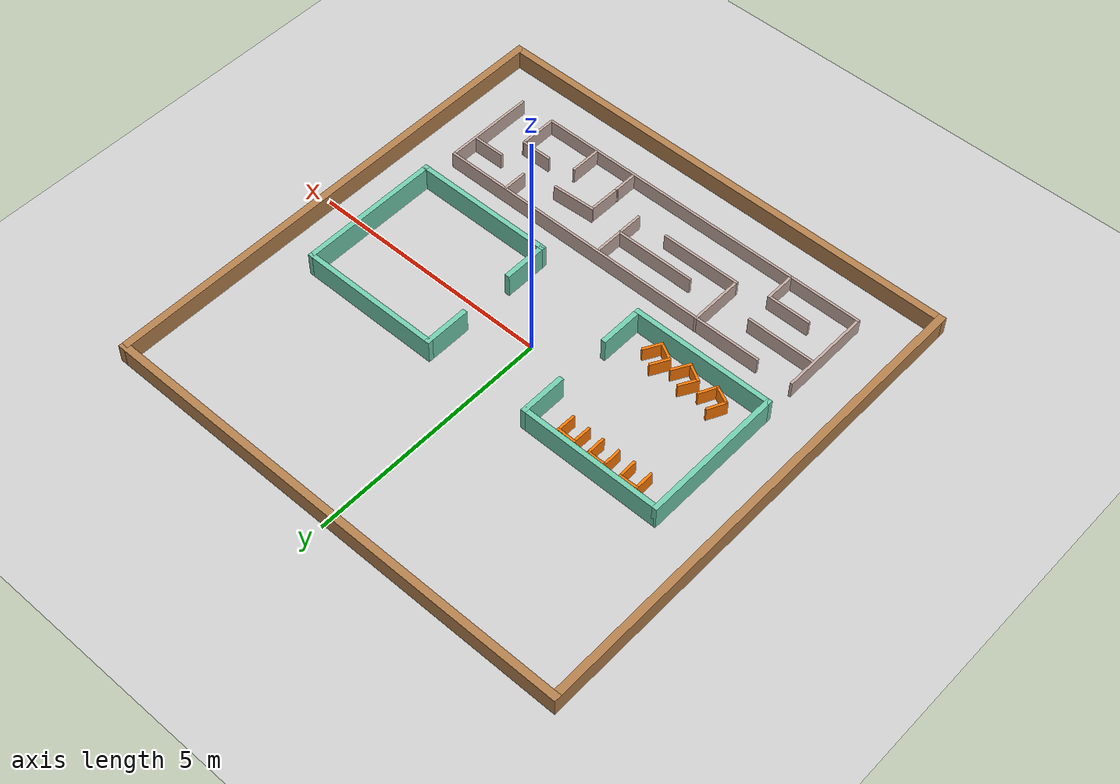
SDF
<sdf version="1.6">
 <world name="default">
  <light name="sun" type="directional">
   <pose>0 0 10 0 -0 0</pose>
   <diffuse>0.8 0.8 0.8 1</diffuse>
   <specular>0.1 0.1 0.1 1</specular>
   <attenuation>
    <range>1000</range>
    <constant>0.9</constant>
    <linear>0.01</linear>
    <quadratic>0.001</quadratic>
   </attenuation>
   <direction>-0.5 0.5 -1</direction>
  </light>
  <model name="ground_plane">
   <static>1</static>
   <link name="link">
    <collision name="collision">
     <geometry><plane><normal>0 0 1</normal><size>100 100</size></plane></geometry>
     <surface><friction><ode><mu>100</mu><mu2>50</mu2></ode></friction></surface>
    </collision>
    <visual name="visual">
     <cast_shadows>0</cast_shadows>
     <geometry><plane><normal>0 0 1</normal><size>100 100</size></plane></geometry>
     <material>
      <script><uri>file://media/materials/scripts/gazebo.material</uri><name>Gazebo/Grey</name></script>
     </material>
    </visual>
   </link>
  </model>
  <gravity>0 0 -9.8</gravity>
  <magnetic_field>6e-06 2.3e-05 -4.2e-05</magnetic_field>
  <atmosphere type="adiabatic"/>
  <physics name="default_physics" default="0" type="ode">
   <max_step_size>0.001</max_step_size>
   <real_time_factor>1</real_time_factor>
   <real_time_update_rate>1000</real_time_update_rate>
  </physics>
  <scene><ambient>0.4 0.4 0.4 1</ambient><background>0.7 0.7 0.7 1</background><shadows>1</shadows></scene>
  <spherical_coordinates>
   <surface_model>EARTH_WGS84</surface_model>
   <latitude_deg>0</latitude_deg>
   <longitude_deg>0</longitude_deg>
   <elevation>0</elevation>
   <heading_deg>0</heading_deg>
  </spherical_coordinates>
  <model name="Border">
   <pose>-0.018808 -0.04832 0 0 -0 0</pose>
   <link name="Wall_3">
    <collision name="Wall_3_Collision">
     <geometry><box><size>10 0.15 0.4</size></box></geometry>
     <pose>0 0 0.2 0 -0 0</pose>
    </collision>
    <visual name="Wall_3_Visual">
     <pose>0 0 0.2 0 -0 0</pose>
     <geometry><box><size>10 0.15 0.4</size></box></geometry>
     <material>
      <script><uri>file://media/materials/scripts/gazebo.material</uri><name>Gazebo/Wood</name></script>
      <ambient>1 1 1 1</ambient>
     </material>
    </visual>
    <pose>0 4.925 0 0 -0 0</pose>
   </link>
   <link name="Wall_4">
    <collision name="Wall_4_Collision">
     <geometry><box><size>10 0.15 0.4</size></box></geometry>
     <pose>0 0 0.2 0 -0 0</pose>
    </collision>
    <visual name="Wall_4_Visual">
     <pose>0 0 0.2 0 -0 0</pose>
     <geometry><box><size>10 0.15 0.4</size></box></geometry>
     <material>
      <script><uri>file://media/materials/scripts/gazebo.material</uri><name>Gazebo/Wood</name></script>
      <ambient>1 1 1 1</ambient>
     </material>
    </visual>
    <pose>4.925 0 0 0 0 -1.5708</pose>
   </link>
   <link name="Wall_5">
    <collision name="Wall_5_Collision">
     <geometry><box><size>10 0.15 0.4</size></box></geometry>
     <pose>0 0 0.2 0 -0 0</pose>
    </collision>
    <visual name="Wall_5_Visual">
     <pose>0 0 0.2 0 -0 0</pose>
     <geometry><box><size>10 0.15 0.4</size></box></geometry>
     <material>
      <script><uri>file://media/materials/scripts/gazebo.material</uri><name>Gazebo/Wood</name></script>
      <ambient>1 1 1 1</ambient>
     </material>
    </visual>
    <pose>0 -4.925 0 0 -0 3.14159</pose>
   </link>
   <link name="Wall_6">
    <collision name="Wall_6_Collision">
     <geometry><box><size>10 0.15 0.4</size></box></geometry>
     <pose>0 0 0.2 0 -0 0</pose>
    </collision>
    <visual name="Wall_6_Visual">
     <pose>0 0 0.2 0 -0 0</pose>
     <geometry><box><size>10 0.15 0.4</size></box></geometry>
     <material>
      <script><uri>file://media/materials/scripts/gazebo.material</uri><name>Gazebo/Wood</name></script>
      <ambient>1 1 1 1</ambient>
     </material>
    </visual>
    <pose>-4.925 0 0 0 -0 1.5708</pose>
   </link>
   <static>1</static>
  </model>
  <model name="EmptyArea">
   <pose>-2.48721 -0.096777 0 0 -0 3.13948</pose>
   <link name="Wall_0">
    <collision name="Wall_0_Collision">
     <geometry><box><size>2.95 0.1 0.5</size></box></geometry>
     <pose>0 0 0.25 0 -0 0</pose>
    </collision>
    <visual name="Wall_0_Visual">
     <pose>0 0 0.25 0 -0 0</pose>
     <geometry><box><size>2.95 0.1 0.5</size></box></geometry>
     <material>
      <script><uri>file://media/materials/scripts/gazebo.material</uri><name>Gazebo/Grey</name></script>
      <ambient>0.435294 0.796078 0.67451 1</ambient>
     </material>
    </visual>
    <pose>0 -1.425 0 0 -0 0</pose>
   </link>
   <link name="Wall_3">
    <collision name="Wall_3_Collision">
     <geometry><box><size>2.95 0.1 0.5</size></box></geometry>
     <pose>0 0 0.25 0 -0 0</pose>
    </collision>
    <visual name="Wall_3_Visual">
     <pose>0 0 0.25 0 -0 0</pose>
     <geometry><box><size>2.95 0.1 0.5</size></box></geometry>
     <material>
      <script><uri>file://media/materials/scripts/gazebo.material</uri><name>Gazebo/Grey</name></script>
      <ambient>0.435294 0.796078 0.67451 1</ambient>
     </material>
    </visual>
    <pose>1.425 0 0 0 -0 1.5708</pose>
   </link>
   <link name="Wall_4">
    <collision name="Wall_4_Collision">
     <geometry><box><size>2.95 0.1 0.5</size></box></geometry>
     <pose>0 0 0.25 0 -0 0</pose>
    </collision>
    <visual name="Wall_4_Visual">
     <pose>0 0 0.25 0 -0 0</pose>
     <geometry><box><size>2.95 0.1 0.5</size></box></geometry>
     <material>
      <script><uri>file://media/materials/scripts/gazebo.material</uri><name>Gazebo/Grey</name></script>
      <ambient>0.435294 0.796078 0.67451 1</ambient>
     </material>
    </visual>
    <pose>0 1.425 0 0 -0 3.14159</pose>
   </link>
   <link name="Wall_5">
    <collision name="Wall_5_Collision">
     <geometry><box><size>0.95 0.1 0.5</size></box></geometry>
     <pose>0 0 0.25 0 -0 0</pose>
    </collision>
    <visual name="Wall_5_Visual">
     <pose>0 0 0.25 0 -0 0</pose>
     <geometry><box><size>0.95 0.1 0.5</size></box></geometry>
     <material>
      <script><uri>file://media/materials/scripts/gazebo.material</uri><name>Gazebo/Grey</name></script>
      <ambient>0.435294 0.796078 0.67451 1</ambient>
     </material>
    </visual>
    <pose>-1.425 1 0 0 0 -1.5708</pose>
   </link>
   <link name="Wall_7">
    <collision name="Wall_7_Collision">
     <geometry><box><size>0.95 0.1 0.5</size></box></geometry>
     <pose>0 0 0.25 0 -0 0</pose>
    </collision>
    <visual name="Wall_7_Visual">
     <pose>0 0 0.25 0 -0 0</pose>
     <geometry><box><size>0.95 0.1 0.5</size></box></geometry>
     <material>
      <script><uri>file://media/materials/scripts/gazebo.material</uri><name>Gazebo/Grey</name></script>
      <ambient>0.435294 0.796078 0.67451 1</ambient>
     </material>
    </visual>
    <pose>-1.425 -1 0 0 -0 1.5708</pose>
   </link>
   <static>1</static>
  </model>
  <model name="ParkingPlace">
   <pose>-1.82007 0.965925 0 0 -0 1.5469</pose>
   <link name="Wall_4">
    <collision name="Wall_4_Collision">
     <geometry><box><size>0.399995 0.05 0.3</size></box></geometry>
     <pose>0 0 0.15 0 -0 0</pose>
    </collision>
    <visual name="Wall_4_Visual">
     <pose>0 0 0.15 0 -0 0</pose>
     <geometry><box><size>0.399995 0.05 0.3</size></box></geometry>
     <material>
      <script><uri>file://media/materials/scripts/gazebo.material</uri><name>Gazebo/Grey</name></script>
      <ambient>0.996078 0.47451 0.0196078 1</ambient>
     </material>
    </visual>
    <pose>0 0.175 0 0 -0 0</pose>
   </link>
   <link name="Wall_5">
    <collision name="Wall_5_Collision">
     <geometry><box><size>0.399958 0.05 0.3</size></box></geometry>
     <pose>0 0 0.15 0 -0 0</pose>
    </collision>
    <visual name="Wall_5_Visual">
     <pose>0 0 0.15 0 -0 0</pose>
     <geometry><box><size>0.399958 0.05 0.3</size></box></geometry>
     <material>
      <script><uri>file://media/materials/scripts/gazebo.material</uri><name>Gazebo/Grey</name></script>
      <ambient>0.996078 0.47451 0.0196078 1</ambient>
     </material>
    </visual>
    <pose>0.175 0 0 0 0 -1.5708</pose>
   </link>
   <link name="Wall_6">
    <collision name="Wall_6_Collision">
     <geometry><box><size>0.400005 0.05 0.3</size></box></geometry>
     <pose>0 0 0.15 0 -0 0</pose>
    </collision>
    <visual name="Wall_6_Visual">
     <pose>0 0 0.15 0 -0 0</pose>
     <geometry><box><size>0.400005 0.05 0.3</size></box></geometry>
     <material>
      <script><uri>file://media/materials/scripts/gazebo.material</uri><name>Gazebo/Grey</name></script>
      <ambient>0.996078 0.47451 0.0196078 1</ambient>
     </material>
    </visual>
    <pose>0 -0.175 0 0 -0 3.14159</pose>
   </link>
   <static>1</static>
  </model>
  <model name="ParkingPlace_0">
   <pose>-2.48777 0.977414 0 0 -0 1.5749</pose>
   <link name="Wall_4">
    <collision name="Wall_4_Collision">
     <geometry><box><size>0.399995 0.05 0.3</size></box></geometry>
     <pose>0 0 0.15 0 -0 0</pose>
    </collision>
    <visual name="Wall_4_Visual">
     <pose>0 0 0.15 0 -0 0</pose>
     <geometry><box><size>0.399995 0.05 0.3</size></box></geometry>
     <material>
      <script><uri>file://media/materials/scripts/gazebo.material</uri><name>Gazebo/Grey</name></script>
      <ambient>0.996078 0.47451 0.0196078 1</ambient>
     </material>
    </visual>
    <pose>0 0.175 0 0 -0 0</pose>
   </link>
   <link name="Wall_5">
    <collision name="Wall_5_Collision">
     <geometry><box><size>0.399958 0.05 0.3</size></box></geometry>
     <pose>0 0 0.15 0 -0 0</pose>
    </collision>
    <visual name="Wall_5_Visual">
     <pose>0 0 0.15 0 -0 0</pose>
     <geometry><box><size>0.399958 0.05 0.3</size></box></geometry>
     <material>
      <script><uri>file://media/materials/scripts/gazebo.material</uri><name>Gazebo/Grey</name></script>
      <ambient>0.996078 0.47451 0.0196078 1</ambient>
     </material>
    </visual>
    <pose>0.175 0 0 0 0 -1.5708</pose>
   </link>
   <link name="Wall_6">
    <collision name="Wall_6_Collision">
     <geometry><box><size>0.400005 0.05 0.3</size></box></geometry>
     <pose>0 0 0.15 0 -0 0</pose>
    </collision>
    <visual name="Wall_6_Visual">
     <pose>0 0 0.15 0 -0 0</pose>
     <geometry><box><size>0.400005 0.05 0.3</size></box></geometry>
     <material>
      <script><uri>file://media/materials/scripts/gazebo.material</uri><name>Gazebo/Grey</name></script>
      <ambient>0.996078 0.47451 0.0196078 1</ambient>
     </material>
    </visual>
    <pose>0 -0.175 0 0 -0 3.14159</pose>
   </link>
   <static>1</static>
  </model>
  <model name="ParkingPlace_1">
   <pose>-3.17275 0.97283 0 0 -0 1.58942</pose>
   <link name="Wall_4">
    <collision name="Wall_4_Collision">
     <geometry><box><size>0.399995 0.05 0.3</size></box></geometry>
     <pose>0 0 0.15 0 -0 0</pose>
    </collision>
    <visual name="Wall_4_Visual">
     <pose>0 0 0.15 0 -0 0</pose>
     <geometry><box><size>0.399995 0.05 0.3</size></box></geometry>
     <material>
      <script><uri>file://media/materials/scripts/gazebo.material</uri><name>Gazebo/Grey</name></script>
      <ambient>0.996078 0.47451 0.0196078 1</ambient>
     </material>
    </visual>
    <pose>0 0.175 0 0 -0 0</pose>
   </link>
   <link name="Wall_5">
    <collision name="Wall_5_Collision">
     <geometry><box><size>0.399958 0.05 0.3</size></box></geometry>
     <pose>0 0 0.15 0 -0 0</pose>
    </collision>
    <visual name="Wall_5_Visual">
     <pose>0 0 0.15 0 -0 0</pose>
     <geometry><box><size>0.399958 0.05 0.3</size></box></geometry>
     <material>
      <script><uri>file://media/materials/scripts/gazebo.material</uri><name>Gazebo/Grey</name></script>
      <ambient>0.996078 0.47451 0.0196078 1</ambient>
     </material>
    </visual>
    <pose>0.175 0 0 0 0 -1.5708</pose>
   </link>
   <link name="Wall_6">
    <collision name="Wall_6_Collision">
     <geometry><box><size>0.400005 0.05 0.3</size></box></geometry>
     <pose>0 0 0.15 0 -0 0</pose>
    </collision>
    <visual name="Wall_6_Visual">
     <pose>0 0 0.15 0 -0 0</pose>
     <geometry><box><size>0.400005 0.05 0.3</size></box></geometry>
     <material>
      <script><uri>file://media/materials/scripts/gazebo.material</uri><name>Gazebo/Grey</name></script>
      <ambient>0.996078 0.47451 0.0196078 1</ambient>
     </material>
    </visual>
    <pose>0 -0.175 0 0 -0 3.14159</pose>
   </link>
   <static>1</static>
  </model>
  <model name="ParkingPlace_2">
   <pose>-1.80399 -1.15464 0 0 0 -2.07876</pose>
   <link name="Wall_4">
    <collision name="Wall_4_Collision">
     <geometry><box><size>0.399995 0.05 0.3</size></box></geometry>
     <pose>0 0 0.15 0 -0 0</pose>
    </collision>
    <visual name="Wall_4_Visual">
     <pose>0 0 0.15 0 -0 0</pose>
     <geometry><box><size>0.399995 0.05 0.3</size></box></geometry>
     <material>
      <script><uri>file://media/materials/scripts/gazebo.material</uri><name>Gazebo/Grey</name></script>
      <ambient>0.996078 0.47451 0.0196078 1</ambient>
     </material>
    </visual>
    <pose>0 0.175 0 0 -0 0</pose>
   </link>
   <link name="Wall_5">
    <collision name="Wall_5_Collision">
     <geometry><box><size>0.399958 0.05 0.3</size></box></geometry>
     <pose>0 0 0.15 0 -0 0</pose>
    </collision>
    <visual name="Wall_5_Visual">
     <pose>0 0 0.15 0 -0 0</pose>
     <geometry><box><size>0.399958 0.05 0.3</size></box></geometry>
     <material>
      <script><uri>file://media/materials/scripts/gazebo.material</uri><name>Gazebo/Grey</name></script>
      <ambient>0.996078 0.47451 0.0196078 1</ambient>
     </material>
    </visual>
    <pose>0.175 0 0 0 0 -1.5708</pose>
   </link>
   <link name="Wall_6">
    <collision name="Wall_6_Collision">
     <geometry><box><size>0.400005 0.05 0.3</size></box></geometry>
     <pose>0 0 0.15 0 -0 0</pose>
    </collision>
    <visual name="Wall_6_Visual">
     <pose>0 0 0.15 0 -0 0</pose>
     <geometry><box><size>0.400005 0.05 0.3</size></box></geometry>
     <material>
      <script><uri>file://media/materials/scripts/gazebo.material</uri><name>Gazebo/Grey</name></script>
      <ambient>0.996078 0.47451 0.0196078 1</ambient>
     </material>
    </visual>
    <pose>0 -0.175 0 0 -0 3.14159</pose>
   </link>
   <static>1</static>
  </model>
  <model name="ParkingPlace_3">
   <pose>-2.44519 -1.13878 0 0 0 -2.08884</pose>
   <link name="Wall_4">
    <collision name="Wall_4_Collision">
     <geometry><box><size>0.399995 0.05 0.3</size></box></geometry>
     <pose>0 0 0.15 0 -0 0</pose>
    </collision>
    <visual name="Wall_4_Visual">
     <pose>0 0 0.15 0 -0 0</pose>
     <geometry><box><size>0.399995 0.05 0.3</size></box></geometry>
     <material>
      <script><uri>file://media/materials/scripts/gazebo.material</uri><name>Gazebo/Grey</name></script>
      <ambient>0.996078 0.47451 0.0196078 1</ambient>
     </material>
    </visual>
    <pose>0 0.175 0 0 -0 0</pose>
   </link>
   <link name="Wall_5">
    <collision name="Wall_5_Collision">
     <geometry><box><size>0.399958 0.05 0.3</size></box></geometry>
     <pose>0 0 0.15 0 -0 0</pose>
    </collision>
    <visual name="Wall_5_Visual">
     <pose>0 0 0.15 0 -0 0</pose>
     <geometry><box><size>0.399958 0.05 0.3</size></box></geometry>
     <material>
      <script><uri>file://media/materials/scripts/gazebo.material</uri><name>Gazebo/Grey</name></script>
      <ambient>0.996078 0.47451 0.0196078 1</ambient>
     </material>
    </visual>
    <pose>0.175 0 0 0 0 -1.5708</pose>
   </link>
   <link name="Wall_6">
    <collision name="Wall_6_Collision">
     <geometry><box><size>0.400005 0.05 0.3</size></box></geometry>
     <pose>0 0 0.15 0 -0 0</pose>
    </collision>
    <visual name="Wall_6_Visual">
     <pose>0 0 0.15 0 -0 0</pose>
     <geometry><box><size>0.400005 0.05 0.3</size></box></geometry>
     <material>
      <script><uri>file://media/materials/scripts/gazebo.material</uri><name>Gazebo/Grey</name></script>
      <ambient>0.996078 0.47451 0.0196078 1</ambient>
     </material>
    </visual>
    <pose>0 -0.175 0 0 -0 3.14159</pose>
   </link>
   <static>1</static>
  </model>
  <model name="ParkingPlace_4">
   <pose>-3.09854 -1.08106 0 0 0 -2.03115</pose>
   <link name="Wall_4">
    <collision name="Wall_4_Collision">
     <geometry><box><size>0.399995 0.05 0.3</size></box></geometry>
     <pose>0 0 0.15 0 -0 0</pose>
    </collision>
    <visual name="Wall_4_Visual">
     <pose>0 0 0.15 0 -0 0</pose>
     <geometry><box><size>0.399995 0.05 0.3</size></box></geometry>
     <material>
      <script><uri>file://media/materials/scripts/gazebo.material</uri><name>Gazebo/Grey</name></script>
      <ambient>0.996078 0.47451 0.0196078 1</ambient>
     </material>
    </visual>
    <pose>0 0.175 0 0 -0 0</pose>
   </link>
   <link name="Wall_5">
    <collision name="Wall_5_Collision">
     <geometry><box><size>0.399958 0.05 0.3</size></box></geometry>
     <pose>0 0 0.15 0 -0 0</pose>
    </collision>
    <visual name="Wall_5_Visual">
     <pose>0 0 0.15 0 -0 0</pose>
     <geometry><box><size>0.399958 0.05 0.3</size></box></geometry>
     <material>
      <script><uri>file://media/materials/scripts/gazebo.material</uri><name>Gazebo/Grey</name></script>
      <ambient>0.996078 0.47451 0.0196078 1</ambient>
     </material>
    </visual>
    <pose>0.175 0 0 0 0 -1.5708</pose>
   </link>
   <link name="Wall_6">
    <collision name="Wall_6_Collision">
     <geometry><box><size>0.400005 0.05 0.3</size></box></geometry>
     <pose>0 0 0.15 0 -0 0</pose>
    </collision>
    <visual name="Wall_6_Visual">
     <pose>0 0 0.15 0 -0 0</pose>
     <geometry><box><size>0.400005 0.05 0.3</size></box></geometry>
     <material>
      <script><uri>file://media/materials/scripts/gazebo.material</uri><name>Gazebo/Grey</name></script>
      <ambient>0.996078 0.47451 0.0196078 1</ambient>
     </material>
    </visual>
    <pose>0 -0.175 0 0 -0 3.14159</pose>
   </link>
   <static>1</static>
  </model>
  <model name="EmptyArea_0">
   <pose>2.55183 -0.05532 0 0 -0 0</pose>
   <link name="Wall_0">
    <collision name="Wall_0_Collision">
     <geometry><box><size>2.95 0.1 0.5</size></box></geometry>
     <pose>0 0 0.25 0 -0 0</pose>
    </collision>
    <visual name="Wall_0_Visual">
     <pose>0 0 0.25 0 -0 0</pose>
     <geometry><box><size>2.95 0.1 0.5</size></box></geometry>
     <material>
      <script><uri>file://media/materials/scripts/gazebo.material</uri><name>Gazebo/Grey</name></script>
      <ambient>0.435294 0.796078 0.67451 1</ambient>
     </material>
    </visual>
    <pose>0 -1.425 0 0 -0 0</pose>
   </link>
   <link name="Wall_3">
    <collision name="Wall_3_Collision">
     <geometry><box><size>2.95 0.1 0.5</size></box></geometry>
     <pose>0 0 0.25 0 -0 0</pose>
    </collision>
    <visual name="Wall_3_Visual">
     <pose>0 0 0.25 0 -0 0</pose>
     <geometry><box><size>2.95 0.1 0.5</size></box></geometry>
     <material>
      <script><uri>file://media/materials/scripts/gazebo.material</uri><name>Gazebo/Grey</name></script>
      <ambient>0.435294 0.796078 0.67451 1</ambient>
     </material>
    </visual>
    <pose>1.425 0 0 0 -0 1.5708</pose>
   </link>
   <link name="Wall_4">
    <collision name="Wall_4_Collision">
     <geometry><box><size>2.95 0.1 0.5</size></box></geometry>
     <pose>0 0 0.25 0 -0 0</pose>
    </collision>
    <visual name="Wall_4_Visual">
     <pose>0 0 0.25 0 -0 0</pose>
     <geometry><box><size>2.95 0.1 0.5</size></box></geometry>
     <material>
      <script><uri>file://media/materials/scripts/gazebo.material</uri><name>Gazebo/Grey</name></script>
      <ambient>0.435294 0.796078 0.67451 1</ambient>
     </material>
    </visual>
    <pose>0 1.425 0 0 -0 3.14159</pose>
   </link>
   <link name="Wall_5">
    <collision name="Wall_5_Collision">
     <geometry><box><size>0.95 0.1 0.5</size></box></geometry>
     <pose>0 0 0.25 0 -0 0</pose>
    </collision>
    <visual name="Wall_5_Visual">
     <pose>0 0 0.25 0 -0 0</pose>
     <geometry><box><size>0.95 0.1 0.5</size></box></geometry>
     <material>
      <script><uri>file://media/materials/scripts/gazebo.material</uri><name>Gazebo/Grey</name></script>
      <ambient>0.435294 0.796078 0.67451 1</ambient>
     </material>
    </visual>
    <pose>-1.425 1 0 0 0 -1.5708</pose>
   </link>
   <link name="Wall_7">
    <collision name="Wall_7_Collision">
     <geometry><box><size>0.95 0.1 0.5</size></box></geometry>
     <pose>0 0 0.25 0 -0 0</pose>
    </collision>
    <visual name="Wall_7_Visual">
     <pose>0 0 0.25 0 -0 0</pose>
     <geometry><box><size>0.95 0.1 0.5</size></box></geometry>
     <material>
      <script><uri>file://media/materials/scripts/gazebo.material</uri><name>Gazebo/Grey</name></script>
      <ambient>0.435294 0.796078 0.67451 1</ambient>
     </material>
    </visual>
    <pose>-1.425 -1 0 0 -0 1.5708</pose>
   </link>
   <static>1</static>
  </model>
  <model name="Labyrinthe">
   <pose>0.026788 -3.11505 0.323391 -3.12676 -0 0.001853</pose>
   <link name="Wall_0">
    <collision name="Wall_0_Collision">
     <geometry><box><size>1.89964 0.05 0.5</size></box></geometry>
     <pose>0 0 0.25 0 -0 0</pose>
    </collision>
    <visual name="Wall_0_Visual">
     <pose>0 0 0.25 0 -0 0</pose>
     <geometry><box><size>1.89964 0.05 0.5</size></box></geometry>
     <material>
      <script><uri>file://media/materials/scripts/gazebo.material</uri><name>Gazebo/Grey</name></script>
      <ambient>0.760784 0.662745 0.627451 1</ambient>
     </material>
    </visual>
    <pose>-3.925 0.001984 0 0 -0 1.5708</pose>
   </link>
   <link name="Wall_10">
    <collision name="Wall_10_Collision">
     <geometry><box><size>1.39957 0.05 0.5</size></box></geometry>
     <pose>0 0 0.25 0 -0 0</pose>
    </collision>
    <visual name="Wall_10_Visual">
     <pose>0 0 0.25 0 -0 0</pose>
     <geometry><box><size>1.39957 0.05 0.5</size></box></geometry>
     <material>
      <script><uri>file://media/materials/scripts/gazebo.material</uri><name>Gazebo/Grey</name></script>
      <ambient>0.760784 0.662745 0.627451 1</ambient>
     </material>
    </visual>
    <pose>-3.218 -0.322017 0 0 -0 0</pose>
   </link>
   <link name="Wall_12">
    <collision name="Wall_12_Collision">
     <geometry><box><size>1.15 0.05 0.5</size></box></geometry>
     <pose>0 0 0.25 0 -0 0</pose>
    </collision>
    <visual name="Wall_12_Visual">
     <pose>0 0 0.25 0 -0 0</pose>
     <geometry><box><size>1.15 0.05 0.5</size></box></geometry>
     <material>
      <script><uri>file://media/materials/scripts/gazebo.material</uri><name>Gazebo/Grey</name></script>
      <ambient>0.760784 0.662745 0.627451 1</ambient>
     </material>
    </visual>
    <pose>-1.842 -0.377016 0 0 -0 1.5708</pose>
   </link>
   <link name="Wall_14">
    <collision name="Wall_14_Collision">
     <geometry><box><size>0.9 0.05 0.5</size></box></geometry>
     <pose>0 0 0.25 0 -0 0</pose>
    </collision>
    <visual name="Wall_14_Visual">
     <pose>0 0 0.25 0 -0 0</pose>
     <geometry><box><size>0.9 0.05 0.5</size></box></geometry>
     <material>
      <script><uri>file://media/materials/scripts/gazebo.material</uri><name>Gazebo/Grey</name></script>
      <ambient>0.760784 0.662745 0.627451 1</ambient>
     </material>
    </visual>
    <pose>-2.89 0.315983 0 0 -0 0</pose>
   </link>
   <link name="Wall_15">
    <collision name="Wall_15_Collision">
     <geometry><box><size>0.649502 0.05 0.5</size></box></geometry>
     <pose>0 0 0.25 0 -0 0</pose>
    </collision>
    <visual name="Wall_15_Visual">
     <pose>0 0 0.25 0 -0 0</pose>
     <geometry><box><size>0.649502 0.05 0.5</size></box></geometry>
     <material>
      <script><uri>file://media/materials/scripts/gazebo.material</uri><name>Gazebo/Grey</name></script>
      <ambient>0.760784 0.662745 0.627451 1</ambient>
     </material>
    </visual>
    <pose>-2.465 0.615984 0 0 -0 1.5708</pose>
   </link>
   <link name="Wall_18">
    <collision name="Wall_18_Collision">
     <geometry><box><size>1.65002 0.05 0.5</size></box></geometry>
     <pose>0 0 0.25 0 -0 0</pose>
    </collision>
    <visual name="Wall_18_Visual">
     <pose>0 0 0.25 0 -0 0</pose>
     <geometry><box><size>1.65002 0.05 0.5</size></box></geometry>
     <material>
      <script><uri>file://media/materials/scripts/gazebo.material</uri><name>Gazebo/Grey</name></script>
      <ambient>0.760784 0.662745 0.627451 1</ambient>
     </material>
    </visual>
    <pose>-1.042 0.172984 0 0 -0 0</pose>
   </link>
   <link name="Wall_2">
    <collision name="Wall_2_Collision">
     <geometry><box><size>1.9 0.05 0.5</size></box></geometry>
     <pose>0 0 0.25 0 -0 0</pose>
    </collision>
    <visual name="Wall_2_Visual">
     <pose>0 0 0.25 0 -0 0</pose>
     <geometry><box><size>1.9 0.05 0.5</size></box></geometry>
     <material>
      <script><uri>file://media/materials/scripts/gazebo.material</uri><name>Gazebo/Grey</name></script>
      <ambient>0.760784 0.662745 0.627451 1</ambient>
     </material>
    </visual>
    <pose>3.925 0.001984 0 0 0 -1.5708</pose>
   </link>
   <link name="Wall_20">
    <collision name="Wall_20_Collision">
     <geometry><box><size>1.15 0.05 0.5</size></box></geometry>
     <pose>0 0 0.25 0 -0 0</pose>
    </collision>
    <visual name="Wall_20_Visual">
     <pose>0 0 0.25 0 -0 0</pose>
     <geometry><box><size>1.15 0.05 0.5</size></box></geometry>
     <material>
      <script><uri>file://media/materials/scripts/gazebo.material</uri><name>Gazebo/Grey</name></script>
      <ambient>0.760784 0.662745 0.627451 1</ambient>
     </material>
    </visual>
    <pose>0.42 -0.366016 0 0 0 -1.5708</pose>
   </link>
   <link name="Wall_22">
    <collision name="Wall_22_Collision">
     <geometry><box><size>1.65027 0.05 0.5</size></box></geometry>
     <pose>0 0 0.25 0 -0 0</pose>
    </collision>
    <visual name="Wall_22_Visual">
     <pose>0 0 0.25 0 -0 0</pose>
     <geometry><box><size>1.65027 0.05 0.5</size></box></geometry>
     <material>
      <script><uri>file://media/materials/scripts/gazebo.material</uri><name>Gazebo/Grey</name></script>
      <ambient>0.760784 0.662745 0.627451 1</ambient>
     </material>
    </visual>
    <pose>-0.393 -0.322017 0 0 -0 3.14159</pose>
   </link>
   <link name="Wall_24">
    <collision name="Wall_24_Collision">
     <geometry><box><size>0.695413 0.05 0.5</size></box></geometry>
     <pose>0 0 0.25 0 -0 0</pose>
    </collision>
    <visual name="Wall_24_Visual">
     <pose>0 0 0.25 0 -0 0</pose>
     <geometry><box><size>0.695413 0.05 0.5</size></box></geometry>
     <material>
      <script><uri>file://media/materials/scripts/gazebo.material</uri><name>Gazebo/Grey</name></script>
      <ambient>0.760784 0.662745 0.627451 1</ambient>
     </material>
    </visual>
    <pose>1.1559 0.101335 0 0 0 -1.55908</pose>
   </link>
   <link name="Wall_25">
    <collision name="Wall_25_Collision">
     <geometry><box><size>0.893659 0.05 0.5</size></box></geometry>
     <pose>0 0 0.25 0 -0 0</pose>
    </collision>
    <visual name="Wall_25_Visual">
     <pose>0 0 0.25 0 -0 0</pose>
     <geometry><box><size>0.893659 0.05 0.5</size></box></geometry>
     <material>
      <script><uri>file://media/materials/scripts/gazebo.material</uri><name>Gazebo/Grey</name></script>
      <ambient>0.760784 0.662745 0.627451 1</ambient>
     </material>
    </visual>
    <pose>1.5809 -0.251595 0 0 0 -0.053802</pose>
   </link>
   <link name="Wall_27">
    <collision name="Wall_27_Collision">
     <geometry><box><size>0.650174 0.05 0.5</size></box></geometry>
     <pose>0 0 0.25 0 -0 0</pose>
    </collision>
    <visual name="Wall_27_Visual">
     <pose>0 0 0.25 0 -0 0</pose>
     <geometry><box><size>0.650174 0.05 0.5</size></box></geometry>
     <material>
      <script><uri>file://media/materials/scripts/gazebo.material</uri><name>Gazebo/Grey</name></script>
      <ambient>0.760784 0.662745 0.627451 1</ambient>
     </material>
    </visual>
    <pose>2.046 0.592983 0 0 0 -1.5708</pose>
   </link>
   <link name="Wall_29">
    <collision name="Wall_29_Collision">
     <geometry><box><size>0.650049 0.05 0.5</size></box></geometry>
     <pose>0 0 0.25 0 -0 0</pose>
    </collision>
    <visual name="Wall_29_Visual">
     <pose>0 0 0.25 0 -0 0</pose>
     <geometry><box><size>0.650049 0.05 0.5</size></box></geometry>
     <material>
      <script><uri>file://media/materials/scripts/gazebo.material</uri><name>Gazebo/Grey</name></script>
      <ambient>0.760784 0.662745 0.627451 1</ambient>
     </material>
    </visual>
    <pose>2.883 0.168984 0 0 -0 0</pose>
   </link>
   <link name="Wall_30">
    <collision name="Wall_30_Collision">
     <geometry><box><size>0.808001 0.05 0.5</size></box></geometry>
     <pose>0 0 0.25 0 -0 0</pose>
    </collision>
    <visual name="Wall_30_Visual">
     <pose>0 0 0.25 0 -0 0</pose>
     <geometry><box><size>0.808001 0.05 0.5</size></box></geometry>
     <material>
      <script><uri>file://media/materials/scripts/gazebo.material</uri><name>Gazebo/Grey</name></script>
      <ambient>0.760784 0.662745 0.627451 1</ambient>
     </material>
    </visual>
    <pose>3.1835 0.547984 0 0 -0 1.56948</pose>
   </link>
   <link name="Wall_32">
    <collision name="Wall_32_Collision">
     <geometry><box><size>0.5 0.05 0.5</size></box></geometry>
     <pose>0 0 0.25 0 -0 0</pose>
    </collision>
    <visual name="Wall_32_Visual">
     <pose>0 0 0.25 0 -0 0</pose>
     <geometry><box><size>0.5 0.05 0.5</size></box></geometry>
     <material>
      <script><uri>file://media/materials/scripts/gazebo.material</uri><name>Gazebo/Grey</name></script>
      <ambient>0.760784 0.662745 0.627451 1</ambient>
     </material>
    </visual>
    <pose>2.644 -0.668754 0 0 -0 1.5708</pose>
   </link>
   <link name="Wall_34">
    <collision name="Wall_34_Collision">
     <geometry><box><size>0.649762 0.05 0.5</size></box></geometry>
     <pose>0 0 0.25 0 -0 0</pose>
    </collision>
    <visual name="Wall_34_Visual">
     <pose>0 0 0.25 0 -0 0</pose>
     <geometry><box><size>0.649762 0.05 0.5</size></box></geometry>
     <material>
      <script><uri>file://media/materials/scripts/gazebo.material</uri><name>Gazebo/Grey</name></script>
      <ambient>0.760784 0.662745 0.627451 1</ambient>
     </material>
    </visual>
    <pose>3.583 -0.354017 0 0 -0 3.14159</pose>
   </link>
   <link name="Wall_36">
    <collision name="Wall_36_Collision">
     <geometry><box><size>0.5 0.05 0.5</size></box></geometry>
     <pose>0 0 0.25 0 -0 0</pose>
    </collision>
    <visual name="Wall_36_Visual">
     <pose>0 0 0.25 0 -0 0</pose>
     <geometry><box><size>0.5 0.05 0.5</size></box></geometry>
     <material>
      <script><uri>file://media/materials/scripts/gazebo.material</uri><name>Gazebo/Grey</name></script>
      <ambient>0.760784 0.662745 0.627451 1</ambient>
     </material>
    </visual>
    <pose>1.15212 0.656581 0 0 -0 1.5708</pose>
   </link>
   <link name="Wall_6">
    <collision name="Wall_6_Collision">
     <geometry><box><size>7.15884 0.05 0.5</size></box></geometry>
     <pose>0 0 0.25 0 -0 0</pose>
    </collision>
    <visual name="Wall_6_Visual">
     <pose>0 0 0.25 0 -0 0</pose>
     <geometry><box><size>7.15884 0.05 0.5</size></box></geometry>
     <material>
      <script><uri>file://media/materials/scripts/gazebo.material</uri><name>Gazebo/Grey</name></script>
      <ambient>0.760784 0.662745 0.627451 1</ambient>
     </material>
    </visual>
    <pose>-0.3705 0.926983 0 0 -0 0</pose>
   </link>
   <link name="Wall_8">
    <collision name="Wall_8_Collision">
     <geometry><box><size>7.14985 0.05 0.5</size></box></geometry>
     <pose>0 0 0.25 0 -0 0</pose>
    </collision>
    <visual name="Wall_8_Visual">
     <pose>0 0 0.25 0 -0 0</pose>
     <geometry><box><size>7.14985 0.05 0.5</size></box></geometry>
     <material>
      <script><uri>file://media/materials/scripts/gazebo.material</uri><name>Gazebo/Grey</name></script>
      <ambient>0.760784 0.662745 0.627451 1</ambient>
     </material>
    </visual>
    <pose>0.375 -0.923016 0 0 -0 3.14159</pose>
   </link>
   <static>1</static>
  </model>
 </world>
</sdf>
